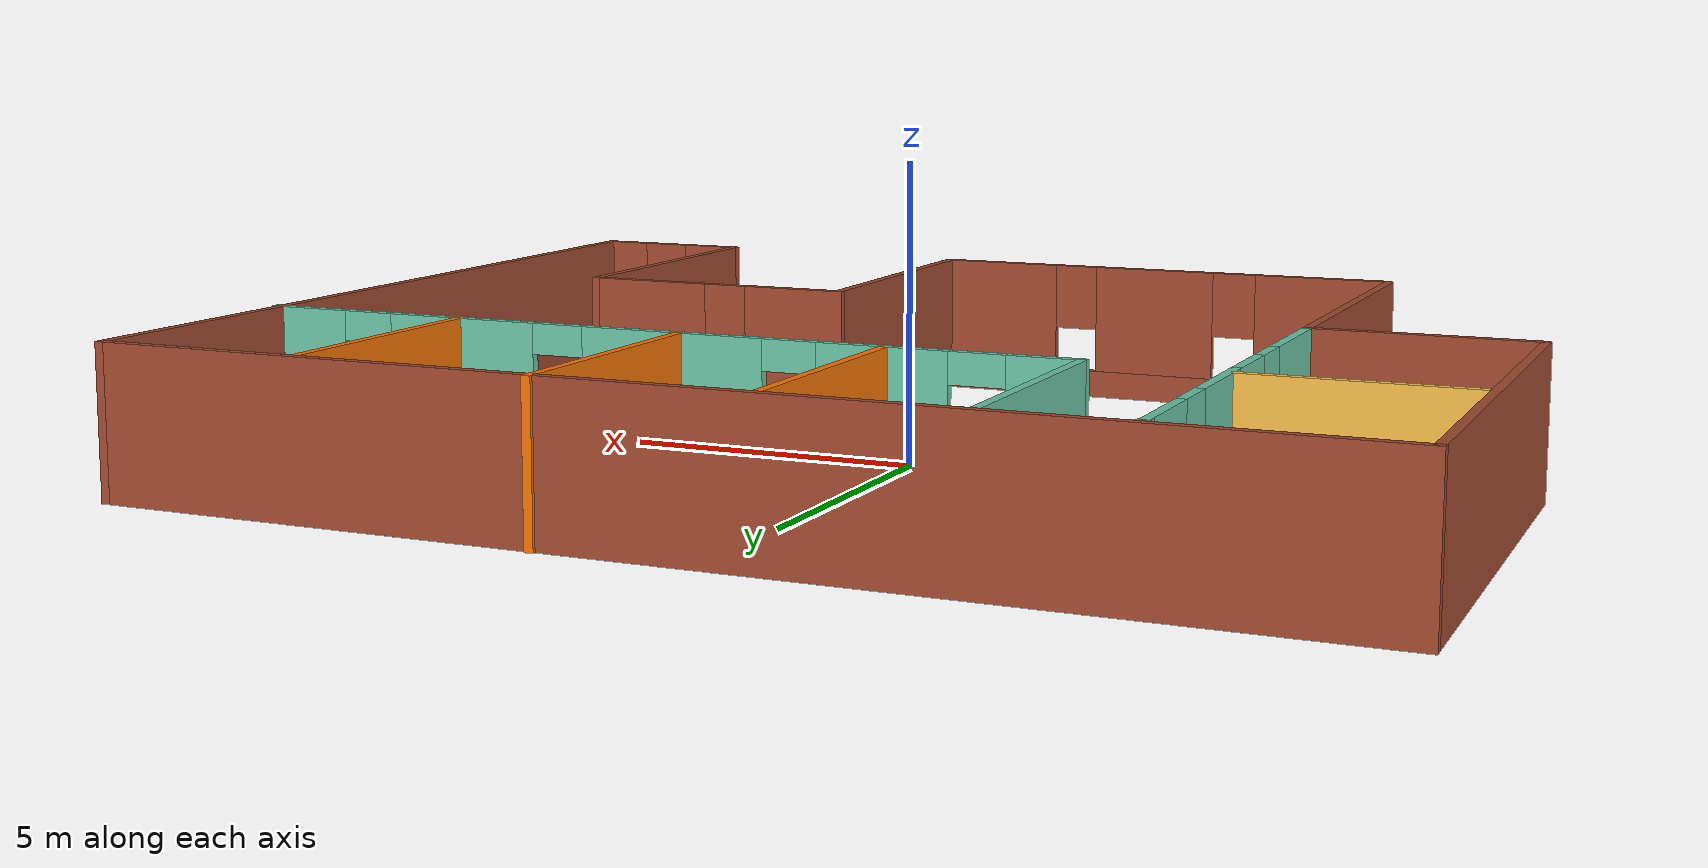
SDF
<?xml version='1.0'?>
<sdf version='1.6'>
  <model name='Builiding'>
    <pose frame=''>0.150383 -0.161746 0 0 -0 0</pose>
    <link name='Wall_0'>
      <collision name='Wall_0_Collision'>
        <geometry>
          <box>
            <size>20 0.15 2.5</size>
          </box>
        </geometry>
        <pose frame=''>0 0 1.25 0 -0 0</pose>
      </collision>
      <visual name='Wall_0_Visual'>
        <pose frame=''>0 0 1.25 0 -0 0</pose>
        <geometry>
          <box>
            <size>20 0.15 2.5</size>
          </box>
        </geometry>
        <material>
          <script>
            <uri>file://media/materials/scripts/gazebo.material</uri>
            <name>Gazebo/Bricks</name>
          </script>
          <ambient>1 1 1 1</ambient>
        </material>
        <meta>
          <layer>0</layer>
        </meta>
      </visual>
      <pose frame=''>-0.035674 7.77353 0 0 -0 3.14159</pose>
    </link>
    <link name='Wall_12'>
      <pose frame=''>2.91067 3.37094 0 0 -0 0</pose>
      <visual name='Wall_12_Visual_0'>
        <pose frame=''>-6.51132 0 1.25 0 -0 0</pose>
        <geometry>
          <box>
            <size>1.22736 0.15 2.5</size>
          </box>
        </geometry>
        <material>
          <script>
            <uri>file://media/materials/scripts/gazebo.material</uri>
            <name>Gazebo/Grey</name>
          </script>
          <ambient>0.435294 0.796078 0.67451 1</ambient>
        </material>
        <meta>
          <layer>0</layer>
        </meta>
      </visual>
      <collision name='Wall_12_Collision_0'>
        <geometry>
          <box>
            <size>1.22736 0.15 2.5</size>
          </box>
        </geometry>
        <pose frame=''>-6.51132 0 1.25 0 -0 0</pose>
      </collision>
      <visual name='Wall_12_Visual_1'>
        <pose frame=''>-3.93495 0 1.25 0 -0 0</pose>
        <geometry>
          <box>
            <size>2.12537 0.15 2.5</size>
          </box>
        </geometry>
        <material>
          <script>
            <uri>file://media/materials/scripts/gazebo.material</uri>
            <name>Gazebo/Grey</name>
          </script>
          <ambient>0.435294 0.796078 0.67451 1</ambient>
        </material>
        <meta>
          <layer>0</layer>
        </meta>
      </visual>
      <collision name='Wall_12_Collision_1'>
        <geometry>
          <box>
            <size>2.12537 0.15 2.5</size>
          </box>
        </geometry>
        <pose frame=''>-3.93495 0 1.25 0 -0 0</pose>
      </collision>
      <visual name='Wall_12_Visual_2'>
        <pose frame=''>-0.399486 0 1.25 0 -0 0</pose>
        <geometry>
          <box>
            <size>3.14556 0.15 2.5</size>
          </box>
        </geometry>
        <material>
          <script>
            <uri>file://media/materials/scripts/gazebo.material</uri>
            <name>Gazebo/Grey</name>
          </script>
          <ambient>0.435294 0.796078 0.67451 1</ambient>
        </material>
        <meta>
          <layer>0</layer>
        </meta>
      </visual>
      <collision name='Wall_12_Collision_2'>
        <geometry>
          <box>
            <size>3.14556 0.15 2.5</size>
          </box>
        </geometry>
        <pose frame=''>-0.399486 0 1.25 0 -0 0</pose>
      </collision>
      <visual name='Wall_12_Visual_3'>
        <pose frame=''>3.41741 0 1.25 0 -0 0</pose>
        <geometry>
          <box>
            <size>2.68823 0.15 2.5</size>
          </box>
        </geometry>
        <material>
          <script>
            <uri>file://media/materials/scripts/gazebo.material</uri>
            <name>Gazebo/Grey</name>
          </script>
          <ambient>0.435294 0.796078 0.67451 1</ambient>
        </material>
        <meta>
          <layer>0</layer>
        </meta>
      </visual>
      <collision name='Wall_12_Collision_3'>
        <geometry>
          <box>
            <size>2.68823 0.15 2.5</size>
          </box>
        </geometry>
        <pose frame=''>3.41741 0 1.25 0 -0 0</pose>
      </collision>
      <visual name='Wall_12_Visual_4'>
        <pose frame=''>6.39326 0 1.25 0 -0 0</pose>
        <geometry>
          <box>
            <size>1.46347 0.15 2.5</size>
          </box>
        </geometry>
        <material>
          <script>
            <uri>file://media/materials/scripts/gazebo.material</uri>
            <name>Gazebo/Grey</name>
          </script>
          <ambient>0.435294 0.796078 0.67451 1</ambient>
        </material>
        <meta>
          <layer>0</layer>
        </meta>
      </visual>
      <collision name='Wall_12_Collision_4'>
        <geometry>
          <box>
            <size>1.46347 0.15 2.5</size>
          </box>
        </geometry>
        <pose frame=''>6.39326 0 1.25 0 -0 0</pose>
      </collision>
      <visual name='Wall_12_Visual_5'>
        <pose frame=''>-5.44764 0 2.25 0 -0 0</pose>
        <geometry>
          <box>
            <size>0.9 0.15 0.5</size>
          </box>
        </geometry>
        <material>
          <script>
            <uri>file://media/materials/scripts/gazebo.material</uri>
            <name>Gazebo/Grey</name>
          </script>
          <ambient>0.435294 0.796078 0.67451 1</ambient>
        </material>
        <meta>
          <layer>0</layer>
        </meta>
      </visual>
      <collision name='Wall_12_Collision_5'>
        <geometry>
          <box>
            <size>0.9 0.15 0.5</size>
          </box>
        </geometry>
        <pose frame=''>-5.44764 0 2.25 0 -0 0</pose>
      </collision>
      <visual name='Wall_12_Visual_6'>
        <pose frame=''>-2.42226 0 2.25 0 -0 0</pose>
        <geometry>
          <box>
            <size>0.9 0.15 0.5</size>
          </box>
        </geometry>
        <material>
          <script>
            <uri>file://media/materials/scripts/gazebo.material</uri>
            <name>Gazebo/Grey</name>
          </script>
          <ambient>0.435294 0.796078 0.67451 1</ambient>
        </material>
        <meta>
          <layer>0</layer>
        </meta>
      </visual>
      <collision name='Wall_12_Collision_6'>
        <geometry>
          <box>
            <size>0.9 0.15 0.5</size>
          </box>
        </geometry>
        <pose frame=''>-2.42226 0 2.25 0 -0 0</pose>
      </collision>
      <visual name='Wall_12_Visual_7'>
        <pose frame=''>1.62329 0 2.25 0 -0 0</pose>
        <geometry>
          <box>
            <size>0.9 0.15 0.5</size>
          </box>
        </geometry>
        <material>
          <script>
            <uri>file://media/materials/scripts/gazebo.material</uri>
            <name>Gazebo/Grey</name>
          </script>
          <ambient>0.435294 0.796078 0.67451 1</ambient>
        </material>
        <meta>
          <layer>0</layer>
        </meta>
      </visual>
      <collision name='Wall_12_Collision_7'>
        <geometry>
          <box>
            <size>0.9 0.15 0.5</size>
          </box>
        </geometry>
        <pose frame=''>1.62329 0 2.25 0 -0 0</pose>
      </collision>
      <visual name='Wall_12_Visual_8'>
        <pose frame=''>5.21153 0 2.25 0 -0 0</pose>
        <geometry>
          <box>
            <size>0.9 0.15 0.5</size>
          </box>
        </geometry>
        <material>
          <script>
            <uri>file://media/materials/scripts/gazebo.material</uri>
            <name>Gazebo/Grey</name>
          </script>
          <ambient>0.435294 0.796078 0.67451 1</ambient>
        </material>
        <meta>
          <layer>0</layer>
        </meta>
      </visual>
      <collision name='Wall_12_Collision_8'>
        <geometry>
          <box>
            <size>0.9 0.15 0.5</size>
          </box>
        </geometry>
        <pose frame=''>5.21153 0 2.25 0 -0 0</pose>
      </collision>
    </link>
    <link name='Wall_17'>
      <collision name='Wall_17_Collision'>
        <geometry>
          <box>
            <size>6.5 0.15 2.5</size>
          </box>
        </geometry>
        <pose frame=''>0 0 1.25 0 -0 0</pose>
      </collision>
      <visual name='Wall_17_Visual'>
        <pose frame=''>0 0 1.25 0 -0 0</pose>
        <geometry>
          <box>
            <size>6.5 0.15 2.5</size>
          </box>
        </geometry>
        <material>
          <script>
            <uri>file://media/materials/scripts/gazebo.material</uri>
            <name>Gazebo/Bricks</name>
          </script>
          <ambient>1 1 1 1</ambient>
        </material>
        <meta>
          <layer>0</layer>
        </meta>
      </visual>
      <pose frame=''>-6.33627 -4.3243 0 0 -0 1.5708</pose>
    </link>
    <link name='Wall_18'>
      <collision name='Wall_18_Collision'>
        <geometry>
          <box>
            <size>3.75 0.15 2.5</size>
          </box>
        </geometry>
        <pose frame=''>0 0 1.25 0 -0 0</pose>
      </collision>
      <visual name='Wall_18_Visual'>
        <pose frame=''>0 0 1.25 0 -0 0</pose>
        <geometry>
          <box>
            <size>3.75 0.15 2.5</size>
          </box>
        </geometry>
        <material>
          <script>
            <uri>file://media/materials/scripts/gazebo.material</uri>
            <name>Gazebo/Bricks</name>
          </script>
          <ambient>1 1 1 1</ambient>
        </material>
        <meta>
          <layer>0</layer>
        </meta>
      </visual>
      <pose frame=''>-8.13627 -1.1493 0 0 -0 3.14159</pose>
    </link>
    <link name='Wall_2'>
      <collision name='Wall_2_Collision'>
        <geometry>
          <box>
            <size>9 0.15 2.5</size>
          </box>
        </geometry>
        <pose frame=''>0 0 1.25 0 -0 0</pose>
      </collision>
      <visual name='Wall_2_Visual'>
        <pose frame=''>0 0 1.25 0 -0 0</pose>
        <geometry>
          <box>
            <size>9 0.15 2.5</size>
          </box>
        </geometry>
        <material>
          <script>
            <uri>file://media/materials/scripts/gazebo.material</uri>
            <name>Gazebo/Bricks</name>
          </script>
          <ambient>1 1 1 1</ambient>
        </material>
        <meta>
          <layer>0</layer>
        </meta>
      </visual>
      <pose frame=''>-9.96067 3.34853 0 0 0 -1.5708</pose>
    </link>
    <link name='Wall_20'>
      <pose frame=''>-6.33627 1.0257 0 0 -0 1.5708</pose>
      <visual name='Wall_20_Visual_0'>
        <pose frame=''>-1.1448 0 1.25 0 -0 0</pose>
        <geometry>
          <box>
            <size>2.21041 0.15 2.5</size>
          </box>
        </geometry>
        <material>
          <script>
            <uri>file://media/materials/scripts/gazebo.material</uri>
            <name>Gazebo/Grey</name>
          </script>
          <ambient>0.435294 0.796078 0.67451 1</ambient>
        </material>
        <meta>
          <layer>0</layer>
        </meta>
      </visual>
      <collision name='Wall_20_Collision_0'>
        <geometry>
          <box>
            <size>2.21041 0.15 2.5</size>
          </box>
        </geometry>
        <pose frame=''>-1.1448 0 1.25 0 -0 0</pose>
      </collision>
      <visual name='Wall_20_Visual_1'>
        <pose frame=''>1.5552 0 1.25 0 -0 0</pose>
        <geometry>
          <box>
            <size>1.38959 0.15 2.5</size>
          </box>
        </geometry>
        <material>
          <script>
            <uri>file://media/materials/scripts/gazebo.material</uri>
            <name>Gazebo/Grey</name>
          </script>
          <ambient>0.435294 0.796078 0.67451 1</ambient>
        </material>
        <meta>
          <layer>0</layer>
        </meta>
      </visual>
      <collision name='Wall_20_Collision_1'>
        <geometry>
          <box>
            <size>1.38959 0.15 2.5</size>
          </box>
        </geometry>
        <pose frame=''>1.5552 0 1.25 0 -0 0</pose>
      </collision>
      <visual name='Wall_20_Visual_2'>
        <pose frame=''>0.410406 0 2.25 0 -0 0</pose>
        <geometry>
          <box>
            <size>0.9 0.15 0.5</size>
          </box>
        </geometry>
        <material>
          <script>
            <uri>file://media/materials/scripts/gazebo.material</uri>
            <name>Gazebo/Grey</name>
          </script>
          <ambient>0.435294 0.796078 0.67451 1</ambient>
        </material>
        <meta>
          <layer>0</layer>
        </meta>
      </visual>
      <collision name='Wall_20_Collision_2'>
        <geometry>
          <box>
            <size>0.9 0.15 0.5</size>
          </box>
        </geometry>
        <pose frame=''>0.410406 0 2.25 0 -0 0</pose>
      </collision>
    </link>
    <link name='Wall_22'>
      <pose frame=''>-6.33627 5.3757 0 0 -0 1.5708</pose>
      <visual name='Wall_22_Visual_0'>
        <pose frame=''>-1.27943 0 1.25 0 -0 0</pose>
        <geometry>
          <box>
            <size>1.94114 0.15 2.5</size>
          </box>
        </geometry>
        <material>
          <script>
            <uri>file://media/materials/scripts/gazebo.material</uri>
            <name>Gazebo/Grey</name>
          </script>
          <ambient>0.435294 0.796078 0.67451 1</ambient>
        </material>
        <meta>
          <layer>0</layer>
        </meta>
      </visual>
      <collision name='Wall_22_Collision_0'>
        <geometry>
          <box>
            <size>1.94114 0.15 2.5</size>
          </box>
        </geometry>
        <pose frame=''>-1.27943 0 1.25 0 -0 0</pose>
      </collision>
      <visual name='Wall_22_Visual_1'>
        <pose frame=''>1.42057 0 1.25 0 -0 0</pose>
        <geometry>
          <box>
            <size>1.65886 0.15 2.5</size>
          </box>
        </geometry>
        <material>
          <script>
            <uri>file://media/materials/scripts/gazebo.material</uri>
            <name>Gazebo/Grey</name>
          </script>
          <ambient>0.435294 0.796078 0.67451 1</ambient>
        </material>
        <meta>
          <layer>0</layer>
        </meta>
      </visual>
      <collision name='Wall_22_Collision_1'>
        <geometry>
          <box>
            <size>1.65886 0.15 2.5</size>
          </box>
        </geometry>
        <pose frame=''>1.42057 0 1.25 0 -0 0</pose>
      </collision>
      <visual name='Wall_22_Visual_2'>
        <pose frame=''>0.141142 0 2.25 0 -0 0</pose>
        <geometry>
          <box>
            <size>0.9 0.15 0.5</size>
          </box>
        </geometry>
        <material>
          <script>
            <uri>file://media/materials/scripts/gazebo.material</uri>
            <name>Gazebo/Grey</name>
          </script>
          <ambient>0.435294 0.796078 0.67451 1</ambient>
        </material>
        <meta>
          <layer>0</layer>
        </meta>
      </visual>
      <collision name='Wall_22_Collision_2'>
        <geometry>
          <box>
            <size>0.9 0.15 0.5</size>
          </box>
        </geometry>
        <pose frame=''>0.141142 0 2.25 0 -0 0</pose>
      </collision>
    </link>
    <link name='Wall_23'>
      <collision name='Wall_23_Collision'>
        <geometry>
          <box>
            <size>0.25 0.15 2.5</size>
          </box>
        </geometry>
        <pose frame=''>0 0 1.25 0 -0 0</pose>
      </collision>
      <visual name='Wall_23_Visual'>
        <pose frame=''>0 0 1.25 0 -0 0</pose>
        <geometry>
          <box>
            <size>0.25 0.15 2.5</size>
          </box>
        </geometry>
        <material>
          <script>
            <uri>file://media/materials/scripts/gazebo.material</uri>
            <name>Gazebo/Grey</name>
          </script>
          <ambient>1 1 1 1</ambient>
        </material>
        <meta>
          <layer>0</layer>
        </meta>
      </visual>
      <pose frame=''>-6.32333 7.599 0 0 -0 1.309</pose>
    </link>
    <link name='Wall_25'>
      <collision name='Wall_25_Collision'>
        <geometry>
          <box>
            <size>4.5 0.15 2.5</size>
          </box>
        </geometry>
        <pose frame=''>0 0 1.25 0 -0 0</pose>
      </collision>
      <visual name='Wall_25_Visual'>
        <pose frame=''>0 0 1.25 0 -0 0</pose>
        <geometry>
          <box>
            <size>4.5 0.15 2.5</size>
          </box>
        </geometry>
        <material>
          <script>
            <uri>file://media/materials/scripts/gazebo.material</uri>
            <name>Gazebo/Grey</name>
          </script>
          <ambient>0.435294 0.796078 0.67451 1</ambient>
        </material>
        <meta>
          <layer>0</layer>
        </meta>
      </visual>
      <pose frame=''>-4.13933 5.54594 0 0 -0 1.5708</pose>
    </link>
    <link name='Wall_27'>
      <collision name='Wall_27_Collision'>
        <geometry>
          <box>
            <size>3.5 0.15 2.5</size>
          </box>
        </geometry>
        <pose frame=''>0 0 1.25 0 -0 0</pose>
      </collision>
      <visual name='Wall_27_Visual'>
        <pose frame=''>0 0 1.25 0 -0 0</pose>
        <geometry>
          <box>
            <size>3.5 0.15 2.5</size>
          </box>
        </geometry>
        <material>
          <script>
            <uri>file://media/materials/scripts/gazebo.material</uri>
            <name>Gazebo/Grey</name>
          </script>
          <ambient>1 0.764706 0.305882 1</ambient>
        </material>
        <meta>
          <layer>0</layer>
        </meta>
      </visual>
      <pose frame=''>-8.11681 3.58201 0 0 -0 3.14159</pose>
    </link>
    <link name='Wall_29'>
      <collision name='Wall_29_Collision'>
        <geometry>
          <box>
            <size>4.5 0.15 2.5</size>
          </box>
        </geometry>
        <pose frame=''>0 0 1.25 0 -0 0</pose>
      </collision>
      <visual name='Wall_29_Visual'>
        <pose frame=''>0 0 1.25 0 -0 0</pose>
        <geometry>
          <box>
            <size>4.5 0.15 2.5</size>
          </box>
        </geometry>
        <material>
          <script>
            <uri>file://media/materials/scripts/gazebo.material</uri>
            <name>Gazebo/Grey</name>
          </script>
          <ambient>0.996078 0.47451 0.0196078 1</ambient>
        </material>
        <meta>
          <layer>0</layer>
        </meta>
      </visual>
      <pose frame=''>-1.05946 5.58112 0 0 -0 1.5708</pose>
    </link>
    <link name='Wall_31'>
      <collision name='Wall_31_Collision'>
        <geometry>
          <box>
            <size>4.5 0.15 2.5</size>
          </box>
        </geometry>
        <pose frame=''>0 0 1.25 0 -0 0</pose>
      </collision>
      <visual name='Wall_31_Visual'>
        <pose frame=''>0 0 1.25 0 -0 0</pose>
        <geometry>
          <box>
            <size>4.5 0.15 2.5</size>
          </box>
        </geometry>
        <material>
          <script>
            <uri>file://media/materials/scripts/gazebo.material</uri>
            <name>Gazebo/Grey</name>
          </script>
          <ambient>0.996078 0.47451 0.0196078 1</ambient>
        </material>
        <meta>
          <layer>0</layer>
        </meta>
      </visual>
      <pose frame=''>2.38806 5.65147 0 0 -0 1.5708</pose>
    </link>
    <link name='Wall_33'>
      <collision name='Wall_33_Collision'>
        <geometry>
          <box>
            <size>4.5 0.15 2.5</size>
          </box>
        </geometry>
        <pose frame=''>0 0 1.25 0 -0 0</pose>
      </collision>
      <visual name='Wall_33_Visual'>
        <pose frame=''>0 0 1.25 0 -0 0</pose>
        <geometry>
          <box>
            <size>4.5 0.15 2.5</size>
          </box>
        </geometry>
        <material>
          <script>
            <uri>file://media/materials/scripts/gazebo.material</uri>
            <name>Gazebo/Grey</name>
          </script>
          <ambient>0.996078 0.47451 0.0196078 1</ambient>
        </material>
        <meta>
          <layer>0</layer>
        </meta>
      </visual>
      <pose frame=''>6.39844 5.47558 0 0 -0 1.5708</pose>
    </link>
    <link name='Wall_4'>
      <collision name='Wall_4_Collision'>
        <geometry>
          <box>
            <size>15.75 0.15 2.5</size>
          </box>
        </geometry>
        <pose frame=''>0 0 1.25 0 -0 0</pose>
      </collision>
      <visual name='Wall_4_Visual'>
        <pose frame=''>0 0 1.25 0 -0 0</pose>
        <geometry>
          <box>
            <size>15.75 0.15 2.5</size>
          </box>
        </geometry>
        <material>
          <script>
            <uri>file://media/materials/scripts/gazebo.material</uri>
            <name>Gazebo/Bricks</name>
          </script>
          <ambient>1 1 1 1</ambient>
        </material>
        <meta>
          <layer>0</layer>
        </meta>
      </visual>
      <pose frame=''>9.88932 -0.026474 0 0 0 -1.5708</pose>
    </link>
    <link name='Wall_5'>
      <pose frame=''>8.46433 -7.82647 0 0 -0 3.14159</pose>
      <visual name='Wall_5_Visual_0'>
        <pose frame=''>-1.0326 0 1.25 0 -0 0</pose>
        <geometry>
          <box>
            <size>0.9348 0.15 2.5</size>
          </box>
        </geometry>
        <material>
          <script>
            <uri>file://media/materials/scripts/gazebo.material</uri>
            <name>Gazebo/Bricks</name>
          </script>
          <ambient>1 1 1 1</ambient>
        </material>
        <meta>
          <layer>0</layer>
        </meta>
      </visual>
      <collision name='Wall_5_Collision_0'>
        <geometry>
          <box>
            <size>0.9348 0.15 2.5</size>
          </box>
        </geometry>
        <pose frame=''>-1.0326 0 1.25 0 -0 0</pose>
      </collision>
      <visual name='Wall_5_Visual_1'>
        <pose frame=''>0.9174 0 1.25 0 -0 0</pose>
        <geometry>
          <box>
            <size>1.1652 0.15 2.5</size>
          </box>
        </geometry>
        <material>
          <script>
            <uri>file://media/materials/scripts/gazebo.material</uri>
            <name>Gazebo/Bricks</name>
          </script>
          <ambient>1 1 1 1</ambient>
        </material>
        <meta>
          <layer>0</layer>
        </meta>
      </visual>
      <collision name='Wall_5_Collision_1'>
        <geometry>
          <box>
            <size>1.1652 0.15 2.5</size>
          </box>
        </geometry>
        <pose frame=''>0.9174 0 1.25 0 -0 0</pose>
      </collision>
      <visual name='Wall_5_Visual_2'>
        <pose frame=''>-0.1152 0 2.25 0 -0 0</pose>
        <geometry>
          <box>
            <size>0.9 0.15 0.5</size>
          </box>
        </geometry>
        <material>
          <script>
            <uri>file://media/materials/scripts/gazebo.material</uri>
            <name>Gazebo/Bricks</name>
          </script>
          <ambient>1 1 1 1</ambient>
        </material>
        <meta>
          <layer>0</layer>
        </meta>
      </visual>
      <collision name='Wall_5_Collision_2'>
        <geometry>
          <box>
            <size>0.9 0.15 0.5</size>
          </box>
        </geometry>
        <pose frame=''>-0.1152 0 2.25 0 -0 0</pose>
      </collision>
    </link>
    <link name='Wall_6'>
      <collision name='Wall_6_Collision'>
        <geometry>
          <box>
            <size>5.75 0.15 2.5</size>
          </box>
        </geometry>
        <pose frame=''>0 0 1.25 0 -0 0</pose>
      </collision>
      <visual name='Wall_6_Visual'>
        <pose frame=''>0 0 1.25 0 -0 0</pose>
        <geometry>
          <box>
            <size>5.75 0.15 2.5</size>
          </box>
        </geometry>
        <material>
          <script>
            <uri>file://media/materials/scripts/gazebo.material</uri>
            <name>Gazebo/Bricks</name>
          </script>
          <ambient>1 1 1 1</ambient>
        </material>
        <meta>
          <layer>0</layer>
        </meta>
      </visual>
      <pose frame=''>7.03933 -5.02647 0 0 -0 1.5708</pose>
    </link>
    <link name='Wall_7'>
      <pose frame=''>4.61433 -2.22647 0 0 -0 3.14159</pose>
      <visual name='Wall_7_Visual_0'>
        <pose frame=''>-1.33946 0 1.25 0 -0 0</pose>
        <geometry>
          <box>
            <size>2.32107 0.15 2.5</size>
          </box>
        </geometry>
        <material>
          <script>
            <uri>file://media/materials/scripts/gazebo.material</uri>
            <name>Gazebo/Bricks</name>
          </script>
          <ambient>1 1 1 1</ambient>
        </material>
        <meta>
          <layer>0</layer>
        </meta>
      </visual>
      <collision name='Wall_7_Collision_0'>
        <geometry>
          <box>
            <size>2.32107 0.15 2.5</size>
          </box>
        </geometry>
        <pose frame=''>-1.33946 0 1.25 0 -0 0</pose>
      </collision>
      <visual name='Wall_7_Visual_1'>
        <pose frame=''>1.16054 0 0.25 0 -0 0</pose>
        <geometry>
          <box>
            <size>2.67893 0.15 0.5</size>
          </box>
        </geometry>
        <material>
          <script>
            <uri>file://media/materials/scripts/gazebo.material</uri>
            <name>Gazebo/Bricks</name>
          </script>
          <ambient>1 1 1 1</ambient>
        </material>
        <meta>
          <layer>0</layer>
        </meta>
      </visual>
      <collision name='Wall_7_Collision_1'>
        <geometry>
          <box>
            <size>2.67893 0.15 0.5</size>
          </box>
        </geometry>
        <pose frame=''>1.16054 0 0.25 0 -0 0</pose>
      </collision>
      <visual name='Wall_7_Visual_2'>
        <pose frame=''>1.56054 0 1.5 0 -0 0</pose>
        <geometry>
          <box>
            <size>1.87893 0.15 2</size>
          </box>
        </geometry>
        <material>
          <script>
            <uri>file://media/materials/scripts/gazebo.material</uri>
            <name>Gazebo/Bricks</name>
          </script>
          <ambient>1 1 1 1</ambient>
        </material>
        <meta>
          <layer>0</layer>
        </meta>
      </visual>
      <collision name='Wall_7_Collision_2'>
        <geometry>
          <box>
            <size>1.87893 0.15 2</size>
          </box>
        </geometry>
        <pose frame=''>1.56054 0 1.5 0 -0 0</pose>
      </collision>
      <visual name='Wall_7_Visual_3'>
        <pose frame=''>0.221073 0 1.9 0 -0 0</pose>
        <geometry>
          <box>
            <size>0.8 0.15 1.2</size>
          </box>
        </geometry>
        <material>
          <script>
            <uri>file://media/materials/scripts/gazebo.material</uri>
            <name>Gazebo/Bricks</name>
          </script>
          <ambient>1 1 1 1</ambient>
        </material>
        <meta>
          <layer>0</layer>
        </meta>
      </visual>
      <collision name='Wall_7_Collision_3'>
        <geometry>
          <box>
            <size>0.8 0.15 1.2</size>
          </box>
        </geometry>
        <pose frame=''>0.221073 0 1.9 0 -0 0</pose>
      </collision>
    </link>
    <link name='Wall_8'>
      <collision name='Wall_8_Collision'>
        <geometry>
          <box>
            <size>5.5 0.15 2.5</size>
          </box>
        </geometry>
        <pose frame=''>0 0 1.25 0 -0 0</pose>
      </collision>
      <visual name='Wall_8_Visual'>
        <pose frame=''>0 0 1.25 0 -0 0</pose>
        <geometry>
          <box>
            <size>5.5 0.15 2.5</size>
          </box>
        </geometry>
        <material>
          <script>
            <uri>file://media/materials/scripts/gazebo.material</uri>
            <name>Gazebo/Bricks</name>
          </script>
          <ambient>1 1 1 1</ambient>
        </material>
        <meta>
          <layer>0</layer>
        </meta>
      </visual>
      <pose frame=''>2.18933 -4.90147 0 0 0 -1.5708</pose>
    </link>
    <link name='Wall_9'>
      <pose frame=''>-1.98567 -7.57647 0 0 -0 3.14159</pose>
      <visual name='Wall_9_Visual_0'>
        <pose frame=''>-3.10472 0 1.25 0 -0 0</pose>
        <geometry>
          <box>
            <size>2.29056 0.15 2.5</size>
          </box>
        </geometry>
        <material>
          <script>
            <uri>file://media/materials/scripts/gazebo.material</uri>
            <name>Gazebo/Bricks</name>
          </script>
          <ambient>1 1 1 1</ambient>
        </material>
        <meta>
          <layer>0</layer>
        </meta>
      </visual>
      <collision name='Wall_9_Collision_0'>
        <geometry>
          <box>
            <size>2.29056 0.15 2.5</size>
          </box>
        </geometry>
        <pose frame=''>-3.10472 0 1.25 0 -0 0</pose>
      </collision>
      <visual name='Wall_9_Visual_1'>
        <pose frame=''>1.14528 0 0.25 0 -0 0</pose>
        <geometry>
          <box>
            <size>6.20944 0.15 0.5</size>
          </box>
        </geometry>
        <material>
          <script>
            <uri>file://media/materials/scripts/gazebo.material</uri>
            <name>Gazebo/Bricks</name>
          </script>
          <ambient>1 1 1 1</ambient>
        </material>
        <meta>
          <layer>0</layer>
        </meta>
      </visual>
      <collision name='Wall_9_Collision_1'>
        <geometry>
          <box>
            <size>6.20944 0.15 0.5</size>
          </box>
        </geometry>
        <pose frame=''>1.14528 0 0.25 0 -0 0</pose>
      </collision>
      <visual name='Wall_9_Visual_2'>
        <pose frame=''>-0.02916 0 1.5 0 -0 0</pose>
        <geometry>
          <box>
            <size>2.26055 0.15 2</size>
          </box>
        </geometry>
        <material>
          <script>
            <uri>file://media/materials/scripts/gazebo.material</uri>
            <name>Gazebo/Bricks</name>
          </script>
          <ambient>1 1 1 1</ambient>
        </material>
        <meta>
          <layer>0</layer>
        </meta>
      </visual>
      <collision name='Wall_9_Collision_2'>
        <geometry>
          <box>
            <size>2.26055 0.15 2</size>
          </box>
        </geometry>
        <pose frame=''>-0.02916 0 1.5 0 -0 0</pose>
      </collision>
      <visual name='Wall_9_Visual_3'>
        <pose frame=''>3.07556 0 1.5 0 -0 0</pose>
        <geometry>
          <box>
            <size>2.34888 0.15 2</size>
          </box>
        </geometry>
        <material>
          <script>
            <uri>file://media/materials/scripts/gazebo.material</uri>
            <name>Gazebo/Bricks</name>
          </script>
          <ambient>1 1 1 1</ambient>
        </material>
        <meta>
          <layer>0</layer>
        </meta>
      </visual>
      <collision name='Wall_9_Collision_3'>
        <geometry>
          <box>
            <size>2.34888 0.15 2</size>
          </box>
        </geometry>
        <pose frame=''>3.07556 0 1.5 0 -0 0</pose>
      </collision>
      <visual name='Wall_9_Visual_4'>
        <pose frame=''>-1.55944 0 1.9 0 -0 0</pose>
        <geometry>
          <box>
            <size>0.8 0.15 1.2</size>
          </box>
        </geometry>
        <material>
          <script>
            <uri>file://media/materials/scripts/gazebo.material</uri>
            <name>Gazebo/Bricks</name>
          </script>
          <ambient>1 1 1 1</ambient>
        </material>
        <meta>
          <layer>0</layer>
        </meta>
      </visual>
      <collision name='Wall_9_Collision_4'>
        <geometry>
          <box>
            <size>0.8 0.15 1.2</size>
          </box>
        </geometry>
        <pose frame=''>-1.55944 0 1.9 0 -0 0</pose>
      </collision>
      <visual name='Wall_9_Visual_5'>
        <pose frame=''>1.50112 0 1.9 0 -0 0</pose>
        <geometry>
          <box>
            <size>0.8 0.15 1.2</size>
          </box>
        </geometry>
        <material>
          <script>
            <uri>file://media/materials/scripts/gazebo.material</uri>
            <name>Gazebo/Bricks</name>
          </script>
          <ambient>1 1 1 1</ambient>
        </material>
        <meta>
          <layer>0</layer>
        </meta>
      </visual>
      <collision name='Wall_9_Collision_5'>
        <geometry>
          <box>
            <size>0.8 0.15 1.2</size>
          </box>
        </geometry>
        <pose frame=''>1.50112 0 1.9 0 -0 0</pose>
      </collision>
    </link>
    <static>1</static>
  </model>
</sdf>
